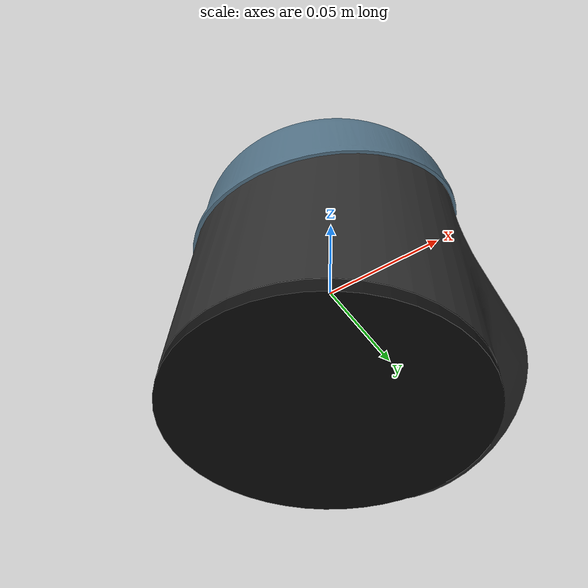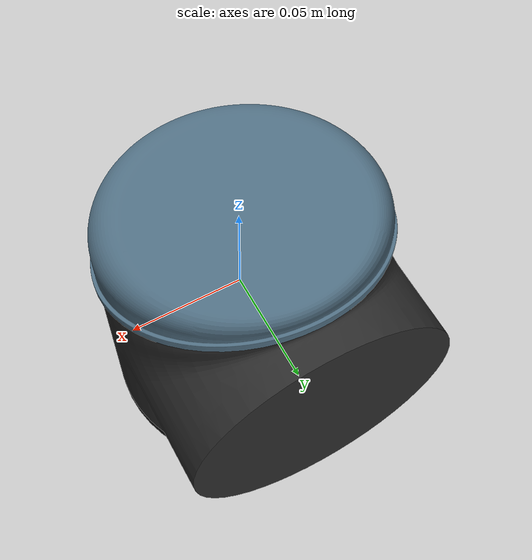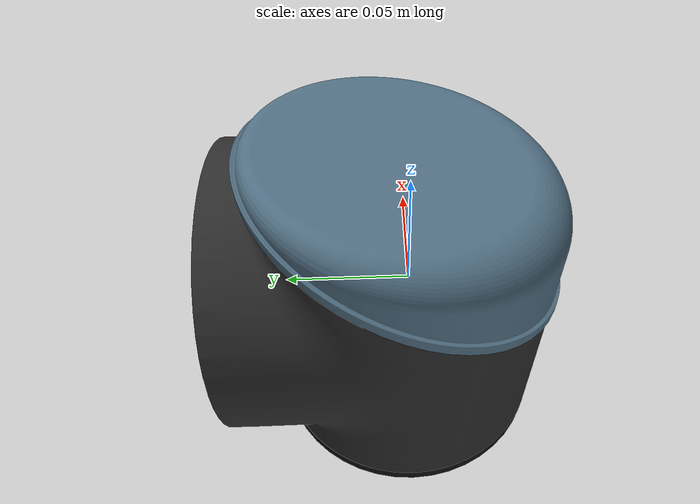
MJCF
<mujoco model="shoulder">
  <default>
    <default class="visual">
      <geom group="2" type="mesh" contype="0" conaffinity="0"/>
    </default>
    <default class="collision">
      <geom group="3" type="mesh"/>
    </default>
  </default>
  <asset>
    <material name="material_shoulder_0" specular="0.20000000000000004" shininess="1.0" rgba="0.17647059 0.17647059 0.17647059 1.0"/>
    <material name="material_shoulder_1" specular="0.20000000000000004" shininess="1.0" rgba="0.06274510 0.06274510 0.06274510 1.0"/>
    <material name="material_shoulder_2" specular="0.20000000000000004" shininess="1.0" rgba="0.31372549 0.43529412 0.51372549 1.0"/>
    <mesh file="shoulder_0.obj"/>
    <mesh file="shoulder_1.obj"/>
    <mesh file="shoulder_2.obj"/>
  </asset>
  <worldbody>
    <body name="shoulder">
      <geom mesh="shoulder_0" material="material_shoulder_2" class="visual"/>
      <geom mesh="shoulder_1" material="material_shoulder_1" class="visual"/>
      <geom mesh="shoulder_2" material="material_shoulder_0" class="visual"/>
      <geom mesh="shoulder_0" class="collision"/>
      <geom mesh="shoulder_1" class="collision"/>
      <geom mesh="shoulder_2" class="collision"/>
    </body>
  </worldbody>
</mujoco>
